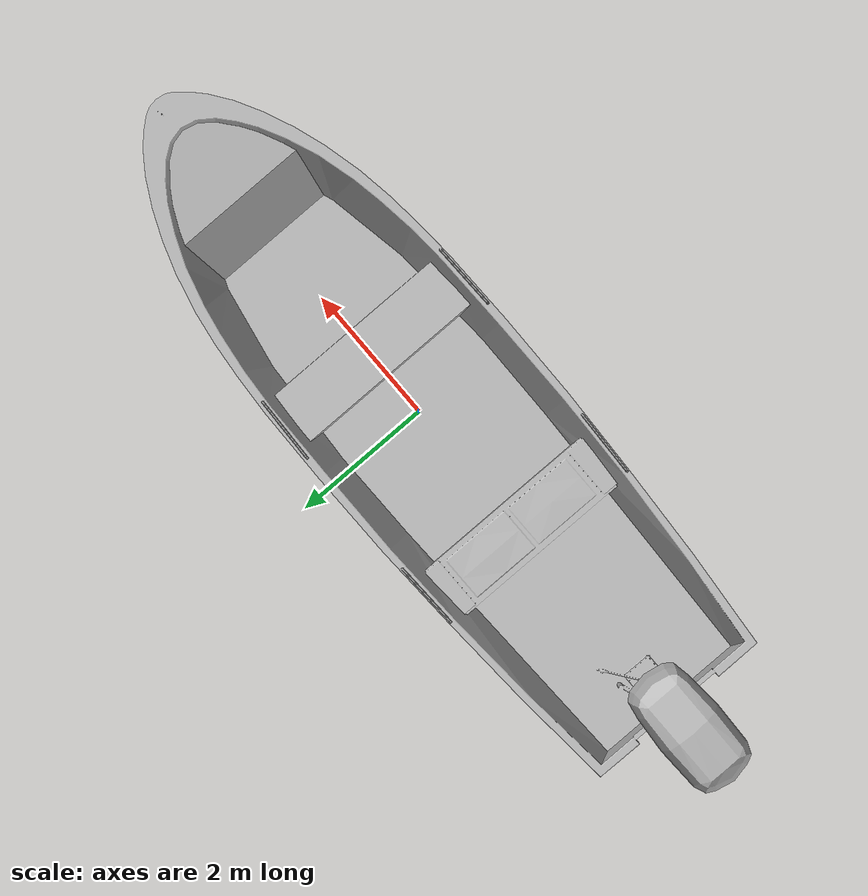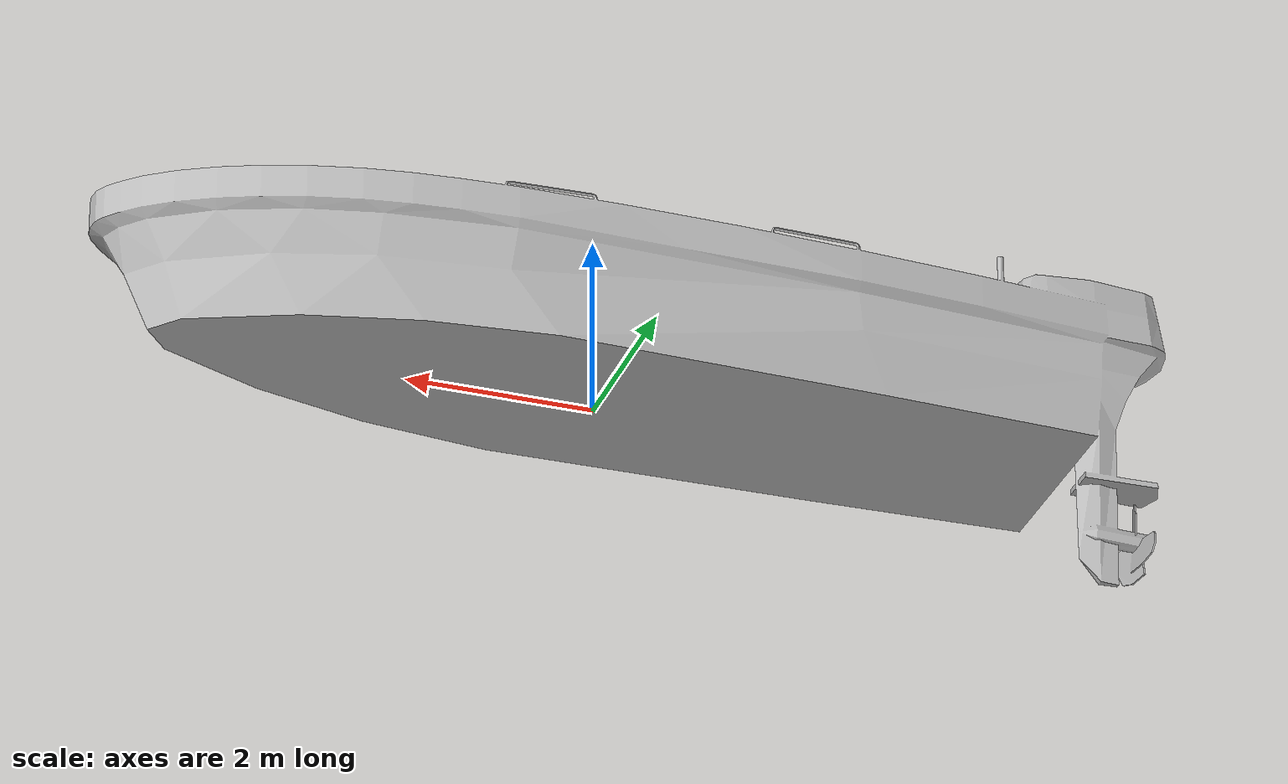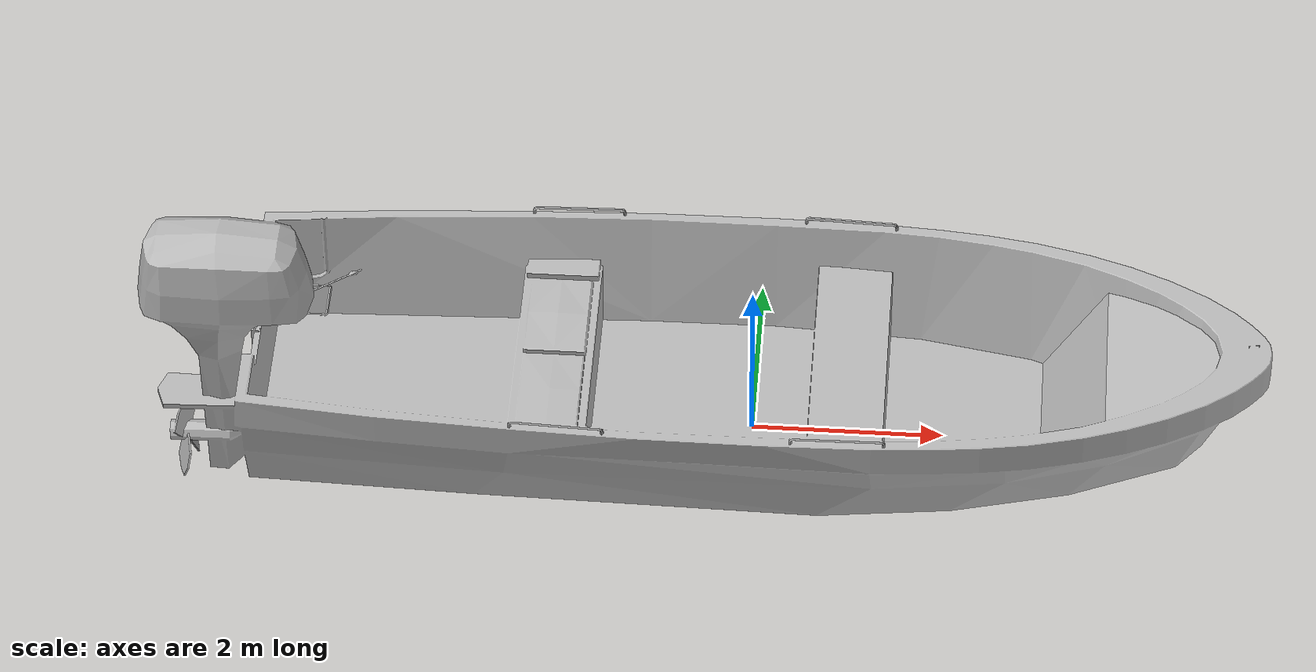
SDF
<?xml version="1.0" ?>
<sdf version="1.5">
  <model name="boat5">
    <static>true</static>
    <link name="link">
      <collision name="boat5_collision">
        <pose>0 0 0.1 0 0 0</pose>
        <geometry>
          <mesh>
	     <uri>model://boat5/meshes/boat5.stl</uri>
          </mesh>
        </geometry>
      </collision>

      <visual name="boat5_visual">
        <cast_shadows>false</cast_shadows>
        <pose>0 0 0.1 0 0 0</pose>
        <geometry>
          <mesh>
	     <uri>model://boat5/meshes/boat5.dae</uri>
          </mesh>
        </geometry>

      </visual>
    </link>
  </model>
</sdf>
